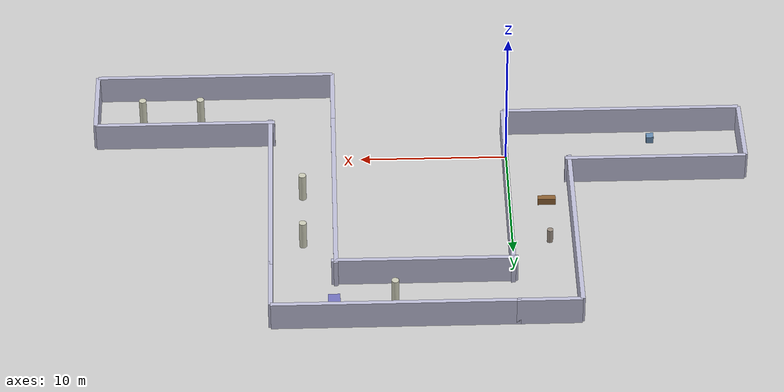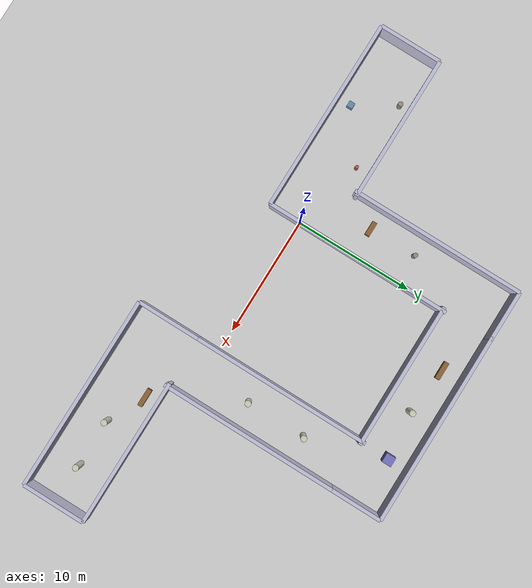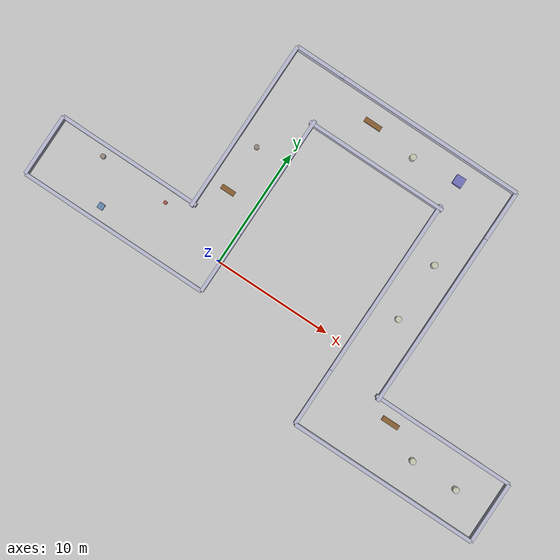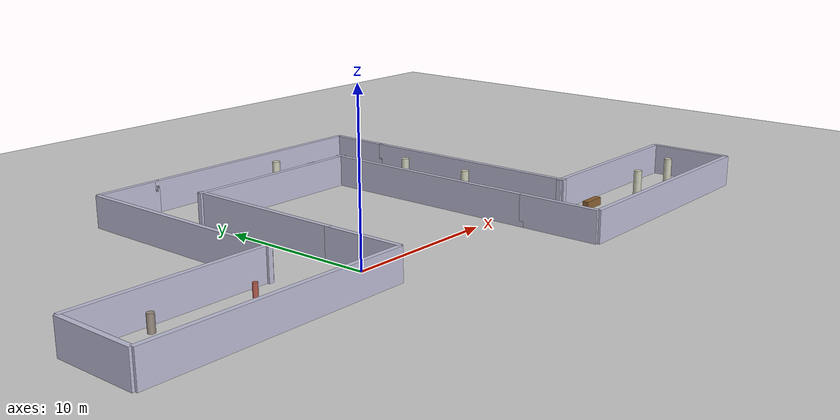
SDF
<sdf version="1.6">
 <world name="corridor_complex">
  <physics type="ode">
   <max_step_size>0.001</max_step_size>
   <real_time_factor>1</real_time_factor>
   <real_time_update_rate>1000</real_time_update_rate>
  </physics>
  <light name="sun" type="directional">
   <pose>0 0 10 0 0 0</pose>
   <diffuse>0.8 0.8 0.8 1</diffuse>
   <specular>0.2 0.2 0.2 1</specular>
   <attenuation>
    <range>1000</range>
    <constant>0.9</constant>
    <linear>0.01</linear>
    <quadratic>0.001</quadratic>
   </attenuation>
   <direction>-0.5 0.1 -0.9</direction>
  </light>
  <model name="ground_plane">
   <static>true</static>
   <link name="link">
    <collision name="col">
     <geometry><plane><normal>0 0 1</normal><size>100 100</size></plane></geometry>
    </collision>
    <visual name="vis">
     <geometry><plane><normal>0 0 1</normal><size>100 100</size></plane></geometry>
     <material><ambient>0.8 0.8 0.8 1</ambient><diffuse>0.8 0.8 0.8 1</diffuse></material>
    </visual>
   </link>
  </model>
  <model name="wall_A_west">
   <static>true</static>
   <pose>-16.15 0.00 1 0 0 0</pose>
   <link name="link">
    <collision name="col"><geometry><box><size>0.30 5.30 2.0</size></box></geometry></collision>
    <visual name="vis">
     <geometry><box><size>0.30 5.30 2.0</size></box></geometry>
     <material><ambient>0.75 0.75 0.85 1</ambient><diffuse>0.75 0.75 0.85 1</diffuse></material>
    </visual>
   </link>
  </model>
  <model name="wall_A_east">
   <static>true</static>
   <pose>0.149181 0.00 1 0 0 0</pose>
   <link name="link">
    <collision name="col"><geometry><box><size>0.30 5.30 2.0</size></box></geometry></collision>
    <visual name="vis">
     <geometry><box><size>0.30 5.30 2.0</size></box></geometry>
     <material><ambient>0.75 0.75 0.85 1</ambient><diffuse>0.75 0.75 0.85 1</diffuse></material>
    </visual>
   </link>
  </model>
  <model name="wall_A_south">
   <static>true</static>
   <pose>-8.00 -2.65 1 0 0 0</pose>
   <link name="link">
    <collision name="col"><geometry><box><size>16.30 0.30 2.0</size></box></geometry></collision>
    <visual name="vis">
     <geometry><box><size>16.30 0.30 2.0</size></box></geometry>
     <material><ambient>0.75 0.75 0.85 1</ambient><diffuse>0.75 0.75 0.85 1</diffuse></material>
    </visual>
   </link>
  </model>
  <model name="wall_B_west_upper">
   <static>true</static>
   <pose>-4.15 9.75 1 0 0 0</pose>
   <link name="link">
    <collision name="col"><geometry><box><size>0.30 14.80 2.0</size></box></geometry></collision>
    <visual name="vis">
     <geometry><box><size>0.30 14.80 2.0</size></box></geometry>
     <material><ambient>0.75 0.75 0.85 1</ambient><diffuse>0.75 0.75 0.85 1</diffuse></material>
    </visual>
   </link>
  </model>
  <model name="wall_B_north">
   <static>true</static>
   <pose>-2.00 17.15 1 0 0 0</pose>
   <link name="link">
    <collision name="col"><geometry><box><size>4.30 0.30 2.0</size></box></geometry></collision>
    <visual name="vis">
     <geometry><box><size>4.30 0.30 2.0</size></box></geometry>
     <material><ambient>0.75 0.75 0.85 1</ambient><diffuse>0.75 0.75 0.85 1</diffuse></material>
    </visual>
   </link>
  </model>
  <model name="wall_C_north">
   <static>true</static>
   <pose>8.00 17.15 1 0 0 0</pose>
   <link name="link">
    <collision name="col"><geometry><box><size>16.30 0.30 2.0</size></box></geometry></collision>
    <visual name="vis">
     <geometry><box><size>16.30 0.30 2.0</size></box></geometry>
     <material><ambient>0.75 0.75 0.85 1</ambient><diffuse>0.75 0.75 0.85 1</diffuse></material>
    </visual>
   </link>
  </model>
  <model name="wall_C_east">
   <static>true</static>
   <pose>16.15 15.00 1 0 0 0</pose>
   <link name="link">
    <collision name="col"><geometry><box><size>0.30 4.30 2.0</size></box></geometry></collision>
    <visual name="vis">
     <geometry><box><size>0.30 4.30 2.0</size></box></geometry>
     <material><ambient>0.75 0.75 0.85 1</ambient><diffuse>0.75 0.75 0.85 1</diffuse></material>
    </visual>
   </link>
  </model>
  <model name="wall_D_east">
   <static>true</static>
   <pose>16.15 5.50 1 0 0 0</pose>
   <link name="link">
    <collision name="col"><geometry><box><size>0.30 15.30 2.0</size></box></geometry></collision>
    <visual name="vis">
     <geometry><box><size>0.30 15.30 2.0</size></box></geometry>
     <material><ambient>0.75 0.75 0.85 1</ambient><diffuse>0.75 0.75 0.85 1</diffuse></material>
    </visual>
   </link>
  </model>
  <model name="wall_E_south">
   <static>true</static>
   <pose>20.00 -7.15 1 0 0 0</pose>
   <link name="link">
    <collision name="col"><geometry><box><size>16.30 0.30 2.0</size></box></geometry></collision>
    <visual name="vis">
     <geometry><box><size>16.30 0.30 2.0</size></box></geometry>
     <material><ambient>0.75 0.75 0.85 1</ambient><diffuse>0.75 0.75 0.85 1</diffuse></material>
    </visual>
   </link>
  </model>
  <model name="wall_E_east">
   <static>true</static>
   <pose>28.15 -4.50 1 0 0 0</pose>
   <link name="link">
    <collision name="col"><geometry><box><size>0.30 5.30 2.0</size></box></geometry></collision>
    <visual name="vis">
     <geometry><box><size>0.30 5.30 2.0</size></box></geometry>
     <material><ambient>0.75 0.75 0.85 1</ambient><diffuse>0.75 0.75 0.85 1</diffuse></material>
    </visual>
   </link>
  </model>
  <model name="wall_A_north_west">
   <static>true</static>
   <pose>-10.00 2.65 1 0 0 0</pose>
   <link name="link">
    <collision name="col"><geometry><box><size>12.30 0.30 2.0</size></box></geometry></collision>
    <visual name="vis">
     <geometry><box><size>12.30 0.30 2.0</size></box></geometry>
     <material><ambient>0.75 0.75 0.85 1</ambient><diffuse>0.75 0.75 0.85 1</diffuse></material>
    </visual>
   </link>
  </model>
  <model name="wall_B_east_lower">
   <static>true</static>
   <pose>0.15 7.75 1 0 0 0</pose>
   <link name="link">
    <collision name="col"><geometry><box><size>0.30 10.80 2.0</size></box></geometry></collision>
    <visual name="vis">
     <geometry><box><size>0.30 10.80 2.0</size></box></geometry>
     <material><ambient>0.75 0.75 0.85 1</ambient><diffuse>0.75 0.75 0.85 1</diffuse></material>
    </visual>
   </link>
  </model>
  <model name="wall_C_south_west">
   <static>true</static>
   <pose>6.00 12.85 1 0 0 0</pose>
   <link name="link">
    <collision name="col"><geometry><box><size>12.30 0.30 2.0</size></box></geometry></collision>
    <visual name="vis">
     <geometry><box><size>12.30 0.30 2.0</size></box></geometry>
     <material><ambient>0.75 0.75 0.85 1</ambient><diffuse>0.75 0.75 0.85 1</diffuse></material>
    </visual>
   </link>
  </model>
  <model name="wall_D_west">
   <static>true</static>
   <pose>11.85 5.50 1 0 0 0</pose>
   <link name="link">
    <collision name="col"><geometry><box><size>0.30 15.30 2.0</size></box></geometry></collision>
    <visual name="vis">
     <geometry><box><size>0.30 15.30 2.0</size></box></geometry>
     <material><ambient>0.75 0.75 0.85 1</ambient><diffuse>0.75 0.75 0.85 1</diffuse></material>
    </visual>
   </link>
  </model>
  <model name="wall_E_north_east">
   <static>true</static>
   <pose>22.00 -1.85 1 0 0 0</pose>
   <link name="link">
    <collision name="col"><geometry><box><size>12.30 0.30 2.0</size></box></geometry></collision>
    <visual name="vis">
     <geometry><box><size>12.30 0.30 2.0</size></box></geometry>
     <material><ambient>0.75 0.75 0.85 1</ambient><diffuse>0.75 0.75 0.85 1</diffuse></material>
    </visual>
   </link>
  </model>
  <model name="wall_E_west">
   <static>true</static>
   <pose>11.85 -4.50 1 0 0 0</pose>
   <link name="link">
    <collision name="col"><geometry><box><size>0.30 5.30 2.0</size></box></geometry></collision>
    <visual name="vis">
     <geometry><box><size>0.30 5.30 2.0</size></box></geometry>
     <material><ambient>0.75 0.75 0.85 1</ambient><diffuse>0.75 0.75 0.85 1</diffuse></material>
    </visual>
   </link>
  </model>
  <model name="pillar_A1">
   <static>true</static>
   <pose>-12.00 1.80 0.50 0 0 0</pose>
   <link name="link">
    <collision name="col">
     <geometry><cylinder><radius>0.2</radius><length>1.0</length></cylinder></geometry>
    </collision>
    <visual name="vis">
     <geometry><cylinder><radius>0.2</radius><length>1.0</length></cylinder></geometry>
     <material><ambient>0.6 0.55 0.5 1</ambient><diffuse>0.6 0.55 0.5 1</diffuse></material>
    </visual>
   </link>
  </model>
  <model name="box_A1">
   <static>true</static>
   <pose>-10.00 -1.50 0.25 0 0 0</pose>
   <link name="link">
    <collision name="col"><geometry><box><size>0.5 0.5 0.5</size></box></geometry></collision>
    <visual name="vis">
     <geometry><box><size>0.5 0.5 0.5</size></box></geometry>
     <material><ambient>0.4 0.55 0.7 1</ambient><diffuse>0.4 0.55 0.7 1</diffuse></material>
    </visual>
   </link>
  </model>
  <model name="cylinder_A2">
   <static>true</static>
   <pose>-6.00 1.50 0.40 0 0 0</pose>
   <link name="link">
    <collision name="col">
     <geometry><cylinder><radius>0.15</radius><length>0.8</length></cylinder></geometry>
    </collision>
    <visual name="vis">
     <geometry><cylinder><radius>0.15</radius><length>0.8</length></cylinder></geometry>
     <material><ambient>0.7 0.35 0.3 1</ambient><diffuse>0.7 0.35 0.3 1</diffuse></material>
    </visual>
   </link>
  </model>
  <model name="bench_B1">
   <static>true</static>
   <pose>-2.50 5.00 0.25 0 0 0</pose>
   <link name="link">
    <collision name="col"><geometry><box><size>1.2 0.4 0.5</size></box></geometry></collision>
    <visual name="vis">
     <geometry><box><size>1.2 0.4 0.5</size></box></geometry>
     <material><ambient>0.55 0.38 0.2 1</ambient><diffuse>0.55 0.38 0.2 1</diffuse></material>
    </visual>
   </link>
  </model>
  <model name="pillar_B1">
   <static>true</static>
   <pose>-2.50 9.00 0.50 0 0 0</pose>
   <link name="link">
    <collision name="col">
     <geometry><cylinder><radius>0.2</radius><length>1.0</length></cylinder></geometry>
    </collision>
    <visual name="vis">
     <geometry><cylinder><radius>0.2</radius><length>1.0</length></cylinder></geometry>
     <material><ambient>0.6 0.55 0.5 1</ambient><diffuse>0.6 0.55 0.5 1</diffuse></material>
    </visual>
   </link>
  </model>
  <model name="bench_C1">
   <static>true</static>
   <pose>4.00 15.50 0.25 0 0 0</pose>
   <link name="link">
    <collision name="col"><geometry><box><size>1.5 0.4 0.5</size></box></geometry></collision>
    <visual name="vis">
     <geometry><box><size>1.5 0.4 0.5</size></box></geometry>
     <material><ambient>0.55 0.38 0.2 1</ambient><diffuse>0.55 0.38 0.2 1</diffuse></material>
    </visual>
   </link>
  </model>
  <model name="pillar_C1">
   <static>true</static>
   <pose>8.00 15.00 1.00 0 0 0</pose>
   <link name="link">
    <collision name="col">
     <geometry><cylinder><radius>0.25</radius><length>2.0</length></cylinder></geometry>
    </collision>
    <visual name="vis">
     <geometry><cylinder><radius>0.25</radius><length>2.0</length></cylinder></geometry>
     <material><ambient>0.8 0.8 0.72 1</ambient><diffuse>0.8 0.8 0.72 1</diffuse></material>
    </visual>
   </link>
  </model>
  <model name="kiosk_C1">
   <static>true</static>
   <pose>12.00 15.50 0.50 0 0 0</pose>
   <link name="link">
    <collision name="col"><geometry><box><size>0.8 0.8 1.0</size></box></geometry></collision>
    <visual name="vis">
     <geometry><box><size>0.8 0.8 1.0</size></box></geometry>
     <material><ambient>0.45 0.45 0.75 1</ambient><diffuse>0.45 0.45 0.75 1</diffuse></material>
    </visual>
   </link>
  </model>
  <model name="pillar_D1">
   <static>true</static>
   <pose>14.00 9.00 1.00 0 0 0</pose>
   <link name="link">
    <collision name="col">
     <geometry><cylinder><radius>0.25</radius><length>2.0</length></cylinder></geometry>
    </collision>
    <visual name="vis">
     <geometry><cylinder><radius>0.25</radius><length>2.0</length></cylinder></geometry>
     <material><ambient>0.8 0.8 0.72 1</ambient><diffuse>0.8 0.8 0.72 1</diffuse></material>
    </visual>
   </link>
  </model>
  <model name="pillar_D2">
   <static>true</static>
   <pose>14.00 4.00 1.00 0 0 0</pose>
   <link name="link">
    <collision name="col">
     <geometry><cylinder><radius>0.25</radius><length>2.0</length></cylinder></geometry>
    </collision>
    <visual name="vis">
     <geometry><cylinder><radius>0.25</radius><length>2.0</length></cylinder></geometry>
     <material><ambient>0.8 0.8 0.72 1</ambient><diffuse>0.8 0.8 0.72 1</diffuse></material>
    </visual>
   </link>
  </model>
  <model name="bench_E1">
   <static>true</static>
   <pose>18.00 -3.00 0.25 0 0 0</pose>
   <link name="link">
    <collision name="col"><geometry><box><size>1.5 0.4 0.5</size></box></geometry></collision>
    <visual name="vis">
     <geometry><box><size>1.5 0.4 0.5</size></box></geometry>
     <material><ambient>0.55 0.38 0.2 1</ambient><diffuse>0.55 0.38 0.2 1</diffuse></material>
    </visual>
   </link>
  </model>
  <model name="pillar_E1">
   <static>true</static>
   <pose>21.00 -4.50 1.00 0 0 0</pose>
   <link name="link">
    <collision name="col">
     <geometry><cylinder><radius>0.25</radius><length>2.0</length></cylinder></geometry>
    </collision>
    <visual name="vis">
     <geometry><cylinder><radius>0.25</radius><length>2.0</length></cylinder></geometry>
     <material><ambient>0.8 0.8 0.72 1</ambient><diffuse>0.8 0.8 0.72 1</diffuse></material>
    </visual>
   </link>
  </model>
  <model name="pillar_E2">
   <static>true</static>
   <pose>25.00 -4.50 1.00 0 0 0</pose>
   <link name="link">
    <collision name="col">
     <geometry><cylinder><radius>0.25</radius><length>2.0</length></cylinder></geometry>
    </collision>
    <visual name="vis">
     <geometry><cylinder><radius>0.25</radius><length>2.0</length></cylinder></geometry>
     <material><ambient>0.8 0.8 0.72 1</ambient><diffuse>0.8 0.8 0.72 1</diffuse></material>
    </visual>
   </link>
  </model>
 </world>
</sdf>
